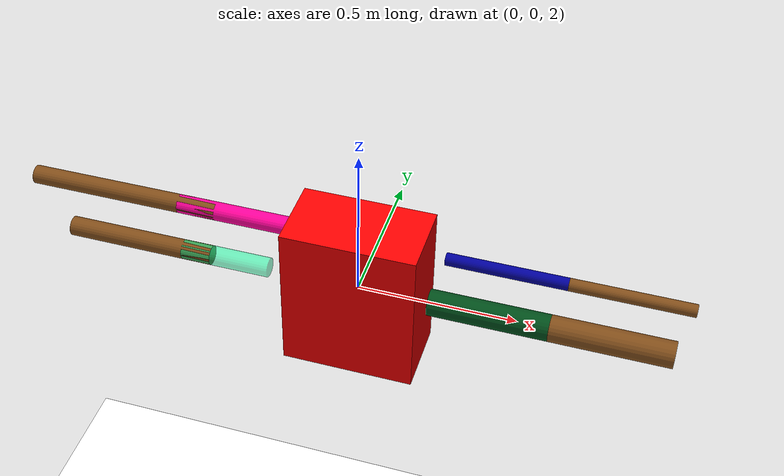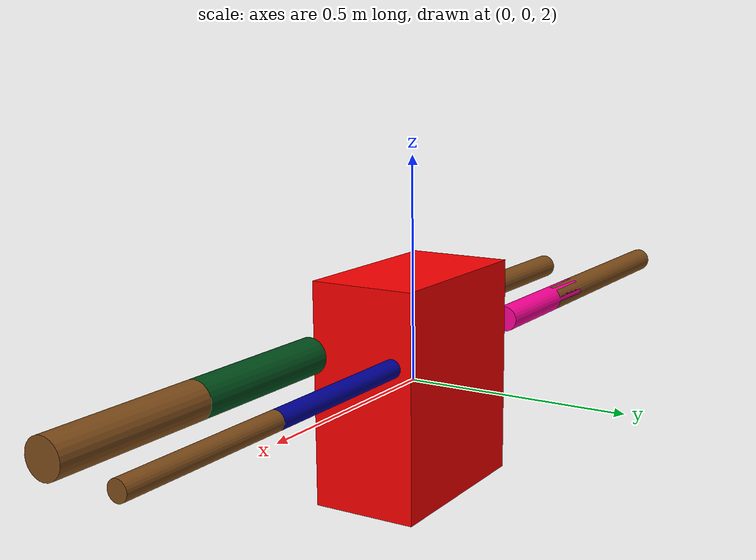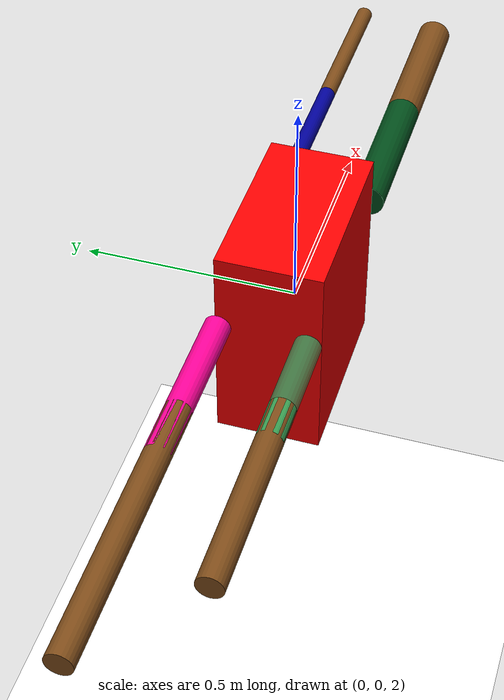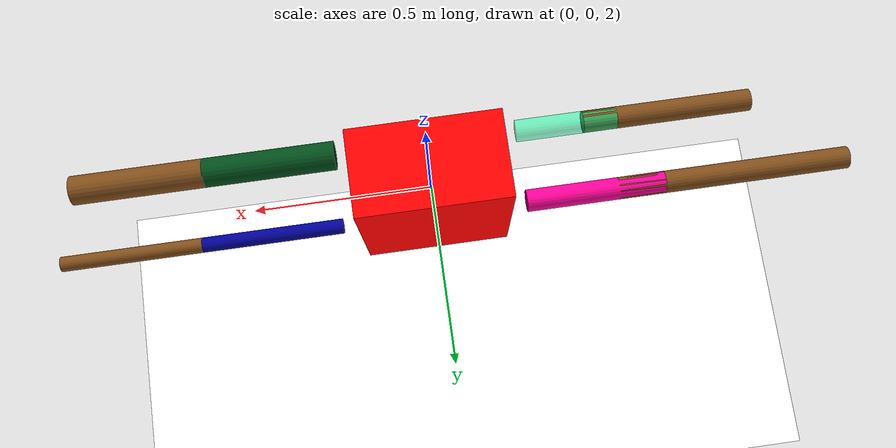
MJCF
<mujoco>
    <option gravity="0 0 -50.81" />
    <worldbody>
        <light diffuse="0.8 0.8 0.8" pos="0 0 8" dir="0 0 -1" />
        <geom type="plane" size="3 3 0.1" rgba="1 1 1 1" />

        <body name="main_body" pos="0 0 2">
            <joint name="main_body" type="free" />
            <geom type="box" size="0.25 0.21 0.12" rgba="1 0 0 1" euler="90 0 90" mass="40" />

            <body name="leg1" pos="-0.39 -0.1 0.1" euler="0 90 0">
                <joint name="leg1-1" pos="0 0 0.14" type="hinge" axis="0 1 0" range="-45 45" />
                <geom type="cylinder" size="0.03 0.14" rgba="0 1 0.6 0.5" mass="10" />
                <body name="shank1" pos="0 0 -0.28">
                    <joint name="leg1-2" pos="0 0 0.14" type="hinge" axis="0 1 0" range="-90 -70" />
                    <geom type="cylinder" size="0.03 0.23331767912300072" rgba="0.5 0.3 0.1 1" mass="30" />
                </body>
            </body>

            <body name="leg2" pos="-0.44 0.1 0.1" euler="0 90 0">
                <joint name="leg2-1" pos="0 0 0.19" type="hinge" axis="0 1 0" range="-45 45" />
                <geom type="cylinder" size="0.03 0.19" rgba="1 0 0.6 1" mass="10" />
                <body name="shank2" pos="0 0 -0.38">
                    <joint name="leg2-2" pos="0 0 0.19" type="hinge" axis="0 1 0" range="-90 -70" />
                    <geom type="cylinder" size="0.03 0.3166454216669295" rgba="0.5 0.3 0.1 1" mass="30" />
                </body>
            </body>

            <body name="leg3" pos="0.43 -0.1 0.1" euler="0 -90 0">
                <joint name="leg3-1" pos="0 0 0.18" type="hinge" axis="0 1 0" range="-45 45" />
                <geom type="cylinder" size="0.04 0.18" rgba="0 0.3 0.1 1" mass="10" />
                <body name="shank3" pos="0 0 -0.36">
                    <joint name="leg3-2" pos="0 0 0.18" type="hinge" axis="0 1 0" range="70 90" />
                    <geom type="cylinder" size="0.04 0.18" rgba="0.5 0.3 0.1 1" mass="30" />
                </body>
            </body>

            <body name="leg4" pos="0.44 0.1 0.1" euler="0 -90 0">
                <joint name="leg4-1" pos="0 0 0.19" type="hinge" axis="0 1 0" range="-45 45" />
                <geom type="cylinder" size="0.02 0.19" rgba="0 0 0.6 1" mass="10" />
                <body name="shank4" pos="0 0 -0.38">
                    <joint name="leg4-2" pos="0 0 0.19" type="hinge" axis="0 1 0" range="70 90" />
                    <geom type="cylinder" size="0.02 0.19" rgba="0.5 0.3 0.1 1" mass="30" />
                </body>
            </body>
        </body>

    </worldbody>
    <actuator>
        <motor joint="leg1-1" name="fl1j" />
        <motor joint="leg1-2" name="fl2j" />
        <motor joint="leg3-1" name="bl1j" />
        <motor joint="leg3-2" name="bl2j" />
        <motor joint="leg2-1" name="fr1j" />
        <motor joint="leg2-2" name="fr2j" />
        <motor joint="leg4-1" name="br1j" />
        <motor joint="leg4-2" name="br2j" />
    </actuator>
</mujoco>
